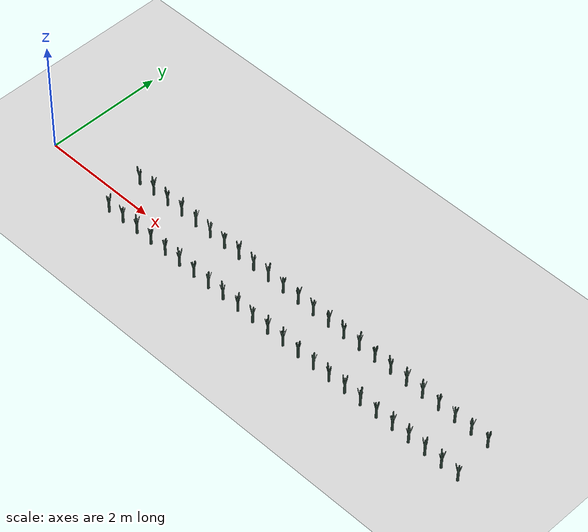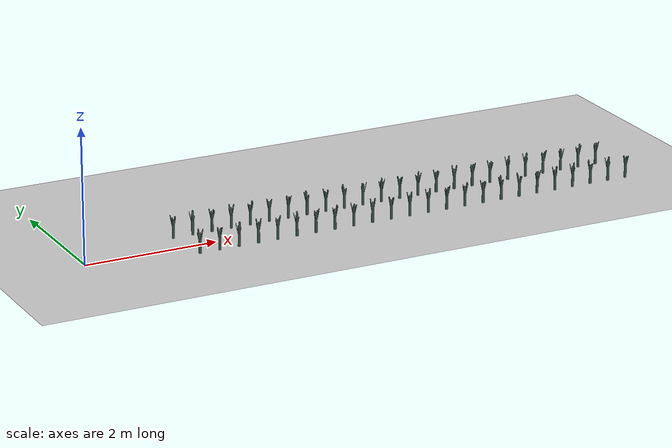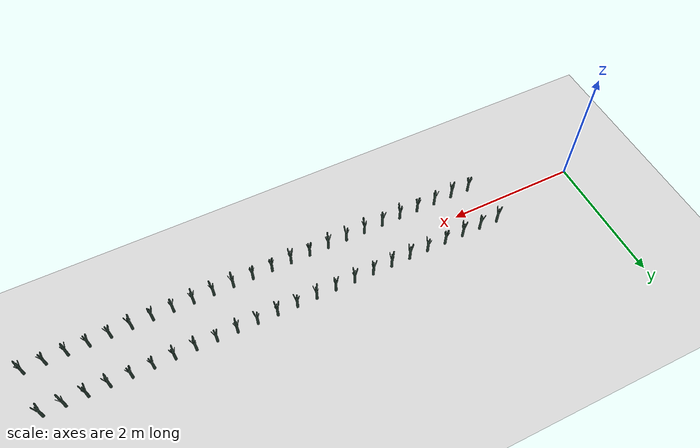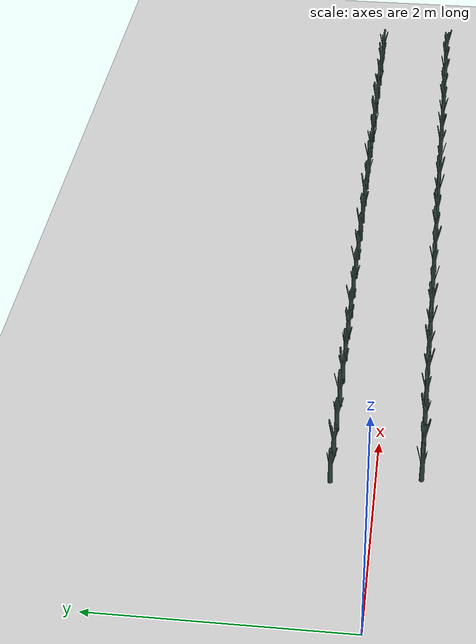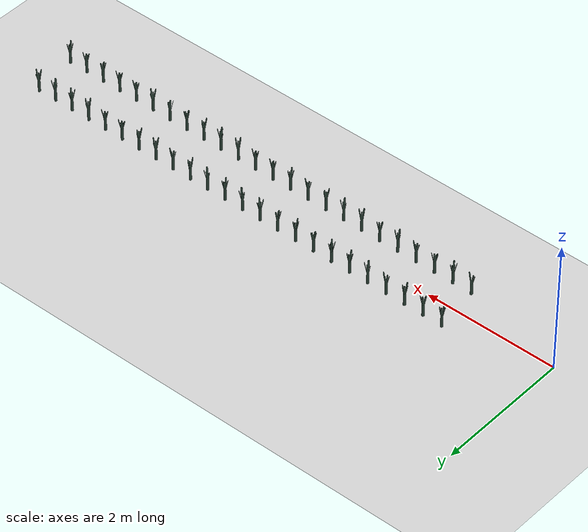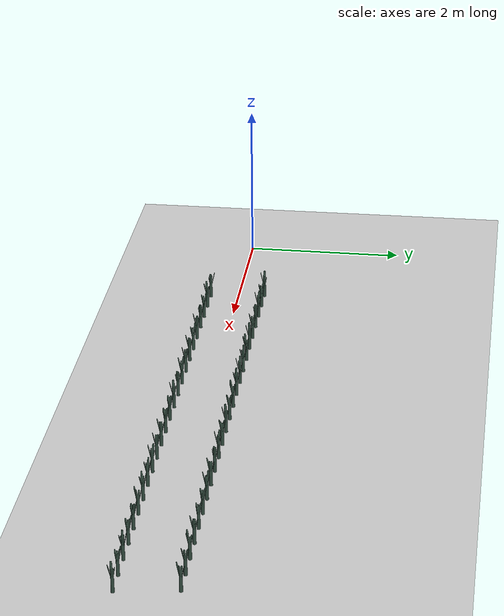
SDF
<sdf version="1.6">
 <world name="default">
  <light name="sun" type="directional">
   <pose>0 0 10 0 -0 0</pose>
   <diffuse>0.5 0.5 0.5 1</diffuse>
   <specular>0.1 0.1 0.1 1</specular>
   <attenuation>
    <range>1000</range>
    <constant>0.9</constant>
    <linear>0.01</linear>
    <quadratic>0.001</quadratic>
   </attenuation>
   <direction>0.9 0.5 -1</direction>
  </light>
  <scene><background>130 200 255 1</background><ambient>130 140 140 1</ambient></scene>
  <include><uri>model://dirt_plane</uri></include>
  <include><uri>model://Leek</uri><pose>1.500000 0.350000 0.15 0 0 135.149096</pose><static>0</static></include>
  <include>
   <uri>model://Leek</uri>
   <pose>1.800000 0.350000 0.15 0 0 -174.818855</pose>
   <static>0</static>
  </include>
  <include><uri>model://Leek</uri><pose>2.100000 0.350000 0.15 0 0 72.189115</pose><static>0</static></include>
  <include><uri>model://Leek</uri><pose>2.400000 0.350000 0.15 0 0 18.990222</pose><static>0</static></include>
  <include><uri>model://Leek</uri><pose>2.700000 0.350000 0.15 0 0 24.078776</pose><static>0</static></include>
  <include><uri>model://Leek</uri><pose>3.000000 0.350000 0.15 0 0 -84.617827</pose><static>0</static></include>
  <include>
   <uri>model://Leek</uri>
   <pose>3.300000 0.350000 0.15 0 0 -165.923072</pose>
   <static>0</static>
  </include>
  <include><uri>model://Leek</uri><pose>3.600000 0.350000 0.15 0 0 139.725145</pose><static>0</static></include>
  <include><uri>model://Leek</uri><pose>3.900000 0.350000 0.15 0 0 -65.918584</pose><static>0</static></include>
  <include><uri>model://Leek</uri><pose>4.200000 0.350000 0.15 0 0 -17.155079</pose><static>0</static></include>
  <include><uri>model://Leek</uri><pose>4.500000 0.350000 0.15 0 0 48.015668</pose><static>0</static></include>
  <include><uri>model://Leek</uri><pose>4.800000 0.350000 0.15 0 0 -88.567541</pose><static>0</static></include>
  <include><uri>model://Leek</uri><pose>5.100000 0.350000 0.15 0 0 53.729905</pose><static>0</static></include>
  <include><uri>model://Leek</uri><pose>5.400000 0.350000 0.15 0 0 36.999722</pose><static>0</static></include>
  <include><uri>model://Leek</uri><pose>5.700000 0.350000 0.15 0 0 9.271501</pose><static>0</static></include>
  <include><uri>model://Leek</uri><pose>6.000000 0.350000 0.15 0 0 -50.007015</pose><static>0</static></include>
  <include><uri>model://Leek</uri><pose>6.300000 0.350000 0.15 0 0 17.089579</pose><static>0</static></include>
  <include><uri>model://Leek</uri><pose>6.600000 0.350000 0.15 0 0 90.816575</pose><static>0</static></include>
  <include><uri>model://Leek</uri><pose>6.900000 0.350000 0.15 0 0 -43.256748</pose><static>0</static></include>
  <include><uri>model://Leek</uri><pose>7.200000 0.350000 0.15 0 0 -62.089465</pose><static>0</static></include>
  <include>
   <uri>model://Leek</uri>
   <pose>7.500000 0.350000 0.15 0 0 -177.542373</pose>
   <static>0</static>
  </include>
  <include>
   <uri>model://Leek</uri>
   <pose>7.800000 0.350000 0.15 0 0 -115.366160</pose>
   <static>0</static>
  </include>
  <include><uri>model://Leek</uri><pose>8.100000 0.350000 0.15 0 0 -32.406534</pose><static>0</static></include>
  <include><uri>model://Leek</uri><pose>8.400000 0.350000 0.15 0 0 104.988615</pose><static>0</static></include>
  <include>
   <uri>model://Leek</uri>
   <pose>1.590975 -0.350000 0.15 0 0 131.978890</pose>
   <static>0</static>
  </include>
  <include><uri>model://Leek</uri><pose>1.890975 -0.350000 0.15 0 0 47.587477</pose><static>0</static></include>
  <include>
   <uri>model://Leek</uri>
   <pose>2.190975 -0.350000 0.15 0 0 -131.009540</pose>
   <static>0</static>
  </include>
  <include><uri>model://Leek</uri><pose>2.490975 -0.350000 0.15 0 0 94.497071</pose><static>0</static></include>
  <include>
   <uri>model://Leek</uri>
   <pose>2.790975 -0.350000 0.15 0 0 -145.891492</pose>
   <static>0</static>
  </include>
  <include>
   <uri>model://Leek</uri>
   <pose>3.090975 -0.350000 0.15 0 0 -55.416326</pose>
   <static>0</static>
  </include>
  <include>
   <uri>model://Leek</uri>
   <pose>3.390975 -0.350000 0.15 0 0 -127.250667</pose>
   <static>0</static>
  </include>
  <include><uri>model://Leek</uri><pose>3.690975 -0.350000 0.15 0 0 5.189437</pose><static>0</static></include>
  <include>
   <uri>model://Leek</uri>
   <pose>3.990975 -0.350000 0.15 0 0 -154.334580</pose>
   <static>0</static>
  </include>
  <include>
   <uri>model://Leek</uri>
   <pose>4.290975 -0.350000 0.15 0 0 -119.113759</pose>
   <static>0</static>
  </include>
  <include><uri>model://Leek</uri><pose>4.590975 -0.350000 0.15 0 0 91.393055</pose><static>0</static></include>
  <include>
   <uri>model://Leek</uri>
   <pose>4.890975 -0.350000 0.15 0 0 163.901992</pose>
   <static>0</static>
  </include>
  <include>
   <uri>model://Leek</uri>
   <pose>5.190975 -0.350000 0.15 0 0 -68.515325</pose>
   <static>0</static>
  </include>
  <include><uri>model://Leek</uri><pose>5.490975 -0.350000 0.15 0 0 -1.632396</pose><static>0</static></include>
  <include><uri>model://Leek</uri><pose>5.790975 -0.350000 0.15 0 0 11.401602</pose><static>0</static></include>
  <include><uri>model://Leek</uri><pose>6.090975 -0.350000 0.15 0 0 90.868187</pose><static>0</static></include>
  <include>
   <uri>model://Leek</uri>
   <pose>6.390975 -0.350000 0.15 0 0 108.188019</pose>
   <static>0</static>
  </include>
  <include>
   <uri>model://Leek</uri>
   <pose>6.690975 -0.350000 0.15 0 0 -123.718710</pose>
   <static>0</static>
  </include>
  <include>
   <uri>model://Leek</uri>
   <pose>6.990975 -0.350000 0.15 0 0 -146.408938</pose>
   <static>0</static>
  </include>
  <include>
   <uri>model://Leek</uri>
   <pose>7.290975 -0.350000 0.15 0 0 126.199325</pose>
   <static>0</static>
  </include>
  <include><uri>model://Leek</uri><pose>7.590975 -0.350000 0.15 0 0 6.993205</pose><static>0</static></include>
  <include><uri>model://Leek</uri><pose>7.890975 -0.350000 0.15 0 0 77.136440</pose><static>0</static></include>
  <include>
   <uri>model://Leek</uri>
   <pose>8.190975 -0.350000 0.15 0 0 -74.601179</pose>
   <static>0</static>
  </include>
  <include>
   <uri>model://Leek</uri>
   <pose>8.490975 -0.350000 0.15 0 0 -122.117463</pose>
   <static>0</static>
  </include>
 </world>
</sdf>

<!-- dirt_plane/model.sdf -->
<sdf version="1.4">
<model name="dirt_plane">
  <static>true</static>
    <link name="link">
      <collision name="collision">
        <geometry>
          <plane>
            <normal>0 0 1</normal>
            <size>100 100</size>
          </plane>
        </geometry>
        <surface>
          <friction>
            <ode>
              <mu>0.99</mu>
              <mu2>0.99</mu2>
            </ode>
          </friction>
        </surface>
      </collision>
      <visual name="visual">
        <cast_shadows>false</cast_shadows>
        <geometry>
          <plane>
            <normal>0 0 1</normal>
            <size>100 100</size>
          </plane>
        </geometry>
        <material>
          <script>
            <uri>model://ground_plane/materials/scripts/my_ground_plane.material</uri>
            <uri>model://ground_plane/materials/textures</uri>
            <name>my_ground_plane/Dirt</name>
          </script>
        </material>
      </visual>
    </link>
  </model>
</sdf>

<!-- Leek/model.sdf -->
<sdf version='1.6'>
  <model name='Leek'>
    <link name='link'>
      <pose frame=''>0 0 0 0 -0 0</pose>
      <inertial>
        <mass>1</mass>
        <inertia>
          <ixx>0.145833</ixx>
          <ixy>0</ixy>
          <ixz>0</ixz>
          <iyy>0.145833</iyy>
          <iyz>0</iyz>
          <izz>0.125</izz>
        </inertia>
        <pose frame=''>0 0 0 0 -0 0</pose>
      </inertial>
      <self_collide>0</self_collide>
      <kinematic>0</kinematic>
      <gravity>1</gravity>
      <visual name='visual'>
        <geometry>
          <mesh>
            <uri>model://Leek/Poireau.dae</uri>
            <scale>1 1 1</scale>
          </mesh>
        </geometry>
        <material>
          <script>
            <name>Gazebo/Grey</name>
            <uri>file://media/materials/scripts/gazebo.material</uri>
          </script>
          <ambient>0.3 0.6 0.5 0</ambient>
          <diffuse>0.2 0.3 0.25 0</diffuse>
          <specular>0 0 0 1</specular>
          <emissive>0 0 0 1</emissive>
          <shader type='vertex'>
            <normal_map>__default__</normal_map>
          </shader>
        </material>
        <pose frame=''>0 0 -0.08 0 -0 0</pose>
        <cast_shadows>1</cast_shadows>
        <transparency>0</transparency>
      </visual>
      <collision name='collision'>
        <laser_retro>0</laser_retro>
        <max_contacts>10</max_contacts>
        <pose frame=''>0 0 0 0 -0 0</pose>
        <geometry>
          <cylinder>
            <radius>0.02</radius>
            <length>0.25</length>
          </cylinder>
        </geometry>
        <surface>
          <friction>
            <ode>
              <mu>1</mu>
              <mu2>1</mu2>
              <fdir1>0 0 0</fdir1>
              <slip1>0</slip1>
              <slip2>0</slip2>
            </ode>
            <torsional>
              <coefficient>1</coefficient>
              <patch_radius>0</patch_radius>
              <surface_radius>0</surface_radius>
              <use_patch_radius>1</use_patch_radius>
              <ode>
                <slip>0</slip>
              </ode>
            </torsional>
          </friction>
          <bounce>
            <restitution_coefficient>0</restitution_coefficient>
            <threshold>1e+06</threshold>
          </bounce>
          <contact>
            <collide_without_contact>0</collide_without_contact>
            <collide_without_contact_bitmask>1</collide_without_contact_bitmask>
            <collide_bitmask>1</collide_bitmask>
            <ode>
              <soft_cfm>0</soft_cfm>
              <soft_erp>0.2</soft_erp>
              <kp>1e+13</kp>
              <kd>1</kd>
              <max_vel>0.01</max_vel>
              <min_depth>0</min_depth>
            </ode>
            <bullet>
              <split_impulse>1</split_impulse>
              <split_impulse_penetration_threshold>-0.01</split_impulse_penetration_threshold>
              <soft_cfm>0</soft_cfm>
              <soft_erp>0.2</soft_erp>
              <kp>1e+13</kp>
              <kd>1</kd>
            </bullet>
          </contact>
        </surface>
      </collision>
    </link>
    <static>0</static>
    <allow_auto_disable>1</allow_auto_disable>
  </model>
</sdf>
